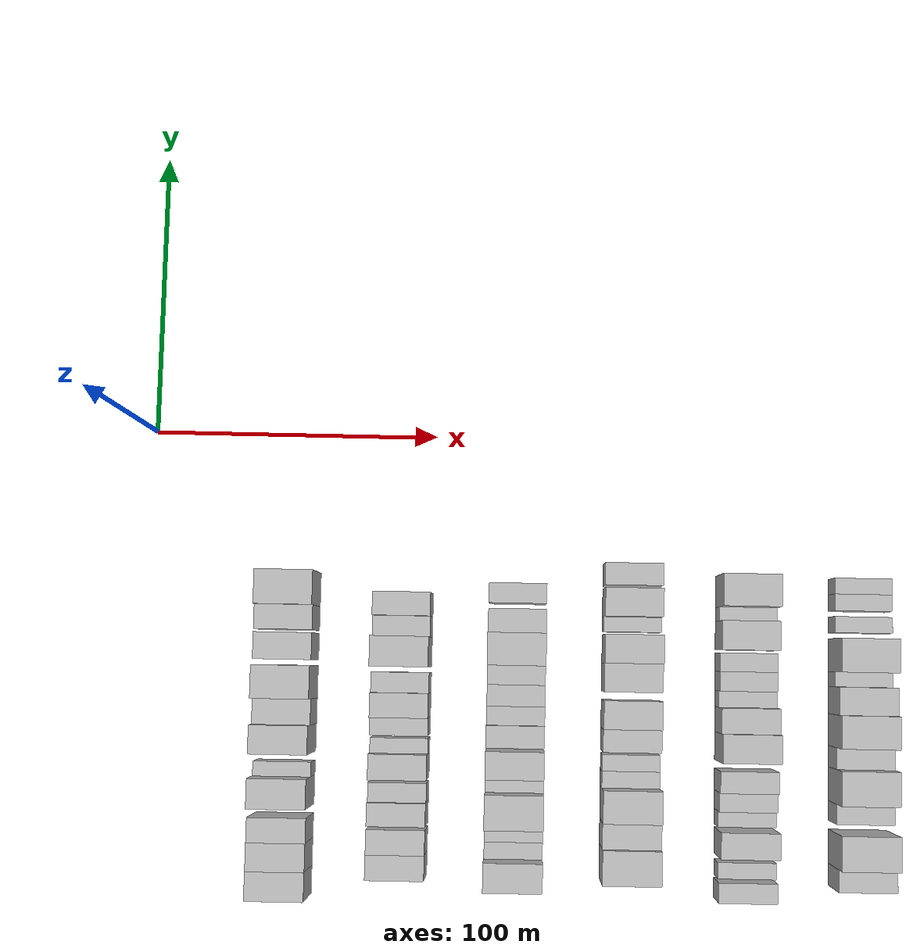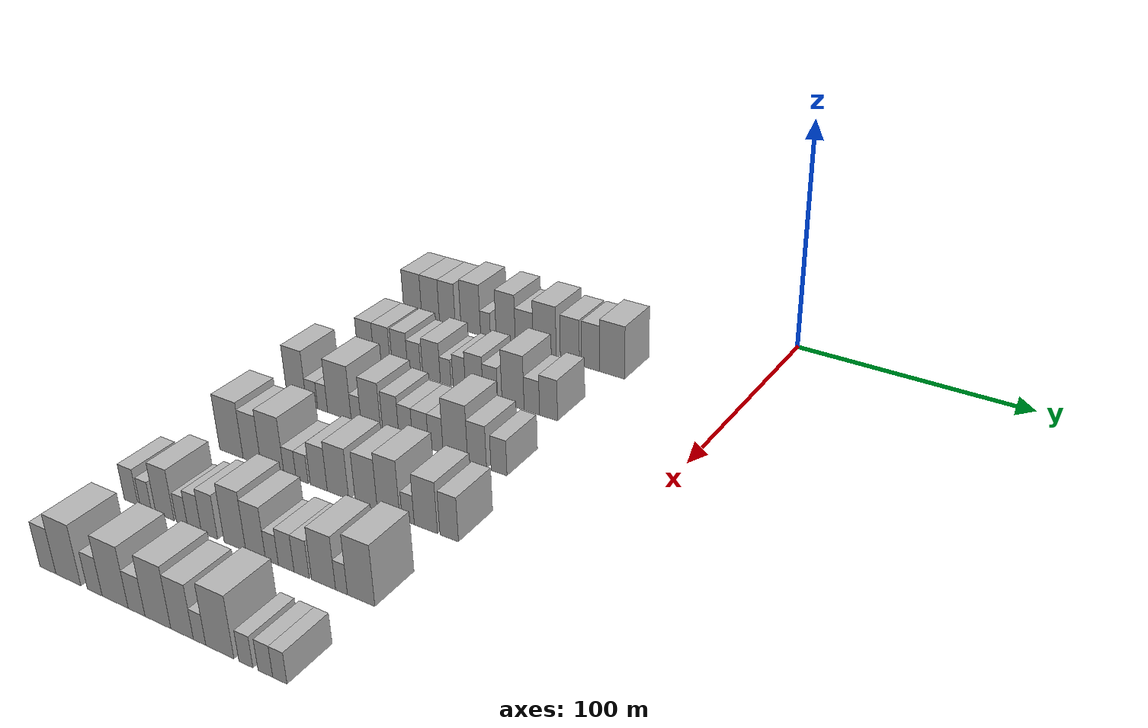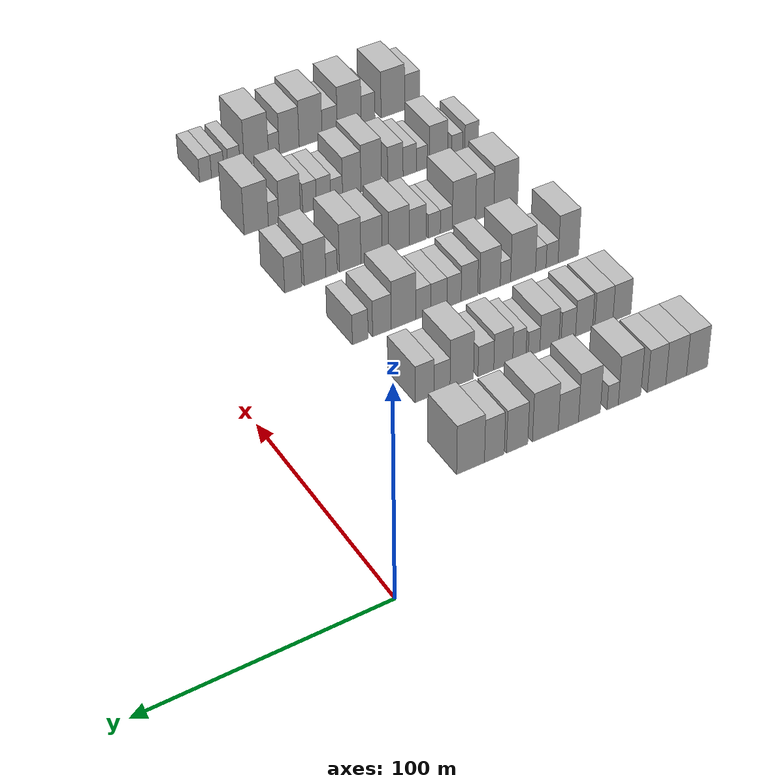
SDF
<sdf version="1.6">
 <world name="default">
  <model name="building_54">
   <static>1</static>
   <pose>50.0000 -156.0148 0 0.000000 0.000000 0.000000</pose>
   <link name="link">
    <pose>0 0 10.50 0 0 0</pose>
    <collision name="collision"><geometry><box><size>20.0000 9.7629 21.0000</size></box></geometry></collision>
    <visual name="visual">
     <cast_shadows>0</cast_shadows>
     <geometry><box><size>20.0000 9.7629 21.0000</size></box></geometry>
     <material>
      <script>
       <uri>model://HANNAS_wall/materials/scripts</uri>
       <uri>model://HANNAS_wall/materials/textures</uri>
       <name>vrc/HANNAS_wall</name>
      </script>
     </material>
    </visual>
   </link>
  </model>
  <model name="building_55">
   <static>1</static>
   <pose>50.0000 -146.3643 0 0.000000 0.000000 0.000000</pose>
   <link name="link">
    <pose>0 0 10.50 0 0 0</pose>
    <collision name="collision"><geometry><box><size>20.0000 9.5380 21.0000</size></box></geometry></collision>
    <visual name="visual">
     <cast_shadows>0</cast_shadows>
     <geometry><box><size>20.0000 9.5380 21.0000</size></box></geometry>
     <material>
      <script>
       <uri>model://HANNAS_wall/materials/scripts</uri>
       <uri>model://HANNAS_wall/materials/textures</uri>
       <name>vrc/HANNAS_wall</name>
      </script>
     </material>
    </visual>
   </link>
  </model>
  <model name="building_56">
   <static>1</static>
   <pose>50.0000 -137.3836 0 0.000000 0.000000 0.000000</pose>
   <link name="link">
    <pose>0 0 10.50 0 0 0</pose>
    <collision name="collision"><geometry><box><size>20.0000 8.4233 21.0000</size></box></geometry></collision>
    <visual name="visual">
     <cast_shadows>0</cast_shadows>
     <geometry><box><size>20.0000 8.4233 21.0000</size></box></geometry>
     <material>
      <script>
       <uri>model://HANNAS_wall/materials/scripts</uri>
       <uri>model://HANNAS_wall/materials/textures</uri>
       <name>vrc/HANNAS_wall</name>
      </script>
     </material>
    </visual>
   </link>
  </model>
  <model name="building_57">
   <static>1</static>
   <pose>50.0000 -125.0789 0 0.000000 0.000000 0.000000</pose>
   <link name="link">
    <pose>0 0 12.00 0 0 0</pose>
    <collision name="collision"><geometry><box><size>20.0000 10.1862 24.0000</size></box></geometry></collision>
    <visual name="visual">
     <cast_shadows>0</cast_shadows>
     <geometry><box><size>20.0000 10.1862 24.0000</size></box></geometry>
     <material>
      <script>
       <uri>model://HANNAS_wall/materials/scripts</uri>
       <uri>model://HANNAS_wall/materials/textures</uri>
       <name>vrc/HANNAS_wall</name>
      </script>
     </material>
    </visual>
   </link>
  </model>
  <model name="building_58">
   <static>1</static>
   <pose>50.0000 -117.4478 0 0.000000 0.000000 0.000000</pose>
   <link name="link">
    <pose>0 0 6.00 0 0 0</pose>
    <collision name="collision"><geometry><box><size>20.0000 5.0759 12.0000</size></box></geometry></collision>
    <visual name="visual">
     <cast_shadows>0</cast_shadows>
     <geometry><box><size>20.0000 5.0759 12.0000</size></box></geometry>
     <material>
      <script>
       <uri>model://HANNAS_wall/materials/scripts</uri>
       <uri>model://HANNAS_wall/materials/textures</uri>
       <name>vrc/HANNAS_wall</name>
      </script>
     </material>
    </visual>
   </link>
  </model>
  <model name="building_59">
   <static>1</static>
   <pose>50.0000 -107.0436 0 0.000000 0.000000 0.000000</pose>
   <link name="link">
    <pose>0 0 12.00 0 0 0</pose>
    <collision name="collision"><geometry><box><size>20.0000 9.7326 24.0000</size></box></geometry></collision>
    <visual name="visual">
     <cast_shadows>0</cast_shadows>
     <geometry><box><size>20.0000 9.7326 24.0000</size></box></geometry>
     <material>
      <script>
       <uri>model://HANNAS_wall/materials/scripts</uri>
       <uri>model://HANNAS_wall/materials/textures</uri>
       <name>vrc/HANNAS_wall</name>
      </script>
     </material>
    </visual>
   </link>
  </model>
  <model name="building_60">
   <static>1</static>
   <pose>50.0000 -97.7264 0 0.000000 0.000000 0.000000</pose>
   <link name="link">
    <pose>0 0 9.00 0 0 0</pose>
    <collision name="collision"><geometry><box><size>20.0000 8.9018 18.0000</size></box></geometry></collision>
    <visual name="visual">
     <cast_shadows>0</cast_shadows>
     <geometry><box><size>20.0000 8.9018 18.0000</size></box></geometry>
     <material>
      <script>
       <uri>model://HANNAS_wall/materials/scripts</uri>
       <uri>model://HANNAS_wall/materials/textures</uri>
       <name>vrc/HANNAS_wall</name>
      </script>
     </material>
    </visual>
   </link>
  </model>
  <model name="building_61">
   <static>1</static>
   <pose>50.0000 -87.6133 0 0.000000 0.000000 0.000000</pose>
   <link name="link">
    <pose>0 0 12.00 0 0 0</pose>
    <collision name="collision"><geometry><box><size>20.0000 11.3243 24.0000</size></box></geometry></collision>
    <visual name="visual">
     <cast_shadows>0</cast_shadows>
     <geometry><box><size>20.0000 11.3243 24.0000</size></box></geometry>
     <material>
      <script>
       <uri>model://HANNAS_wall/materials/scripts</uri>
       <uri>model://HANNAS_wall/materials/textures</uri>
       <name>vrc/HANNAS_wall</name>
      </script>
     </material>
    </visual>
   </link>
  </model>
  <model name="building_62">
   <static>1</static>
   <pose>50.0000 -75.3407 0 0.000000 0.000000 0.000000</pose>
   <link name="link">
    <pose>0 0 10.50 0 0 0</pose>
    <collision name="collision"><geometry><box><size>20.0000 9.2208 21.0000</size></box></geometry></collision>
    <visual name="visual">
     <cast_shadows>0</cast_shadows>
     <geometry><box><size>20.0000 9.2208 21.0000</size></box></geometry>
     <material>
      <script>
       <uri>model://HANNAS_wall/materials/scripts</uri>
       <uri>model://HANNAS_wall/materials/textures</uri>
       <name>vrc/HANNAS_wall</name>
      </script>
     </material>
    </visual>
   </link>
  </model>
  <model name="building_63">
   <static>1</static>
   <pose>50.0000 -65.4901 0 0.000000 0.000000 0.000000</pose>
   <link name="link">
    <pose>0 0 10.50 0 0 0</pose>
    <collision name="collision"><geometry><box><size>20.0000 8.4803 21.0000</size></box></geometry></collision>
    <visual name="visual">
     <cast_shadows>0</cast_shadows>
     <geometry><box><size>20.0000 8.4803 21.0000</size></box></geometry>
     <material>
      <script>
       <uri>model://HANNAS_wall/materials/scripts</uri>
       <uri>model://HANNAS_wall/materials/textures</uri>
       <name>vrc/HANNAS_wall</name>
      </script>
     </material>
    </visual>
   </link>
  </model>
  <model name="building_64">
   <static>1</static>
   <pose>50.0000 -55.3311 0 0.000000 0.000000 0.000000</pose>
   <link name="link">
    <pose>0 0 12.00 0 0 0</pose>
    <collision name="collision"><geometry><box><size>20.0000 11.8376 24.0000</size></box></geometry></collision>
    <visual name="visual">
     <cast_shadows>0</cast_shadows>
     <geometry><box><size>20.0000 11.8376 24.0000</size></box></geometry>
     <material>
      <script>
       <uri>model://HANNAS_wall/materials/scripts</uri>
       <uri>model://HANNAS_wall/materials/textures</uri>
       <name>vrc/HANNAS_wall</name>
      </script>
     </material>
    </visual>
   </link>
  </model>
  <model name="building_184">
   <static>1</static>
   <pose>90.0000 -149.4450 0 0.000000 0.000000 0.000000</pose>
   <link name="link">
    <pose>0 0 9.00 0 0 0</pose>
    <collision name="collision"><geometry><box><size>20.0000 8.4747 18.0000</size></box></geometry></collision>
    <visual name="visual">
     <cast_shadows>0</cast_shadows>
     <geometry><box><size>20.0000 8.4747 18.0000</size></box></geometry>
     <material>
      <script>
       <uri>model://HANNAS_wall/materials/scripts</uri>
       <uri>model://HANNAS_wall/materials/textures</uri>
       <name>vrc/HANNAS_wall</name>
      </script>
     </material>
    </visual>
   </link>
  </model>
  <model name="building_185">
   <static>1</static>
   <pose>90.0000 -140.9749 0 0.000000 0.000000 0.000000</pose>
   <link name="link">
    <pose>0 0 9.00 0 0 0</pose>
    <collision name="collision"><geometry><box><size>20.0000 8.4656 18.0000</size></box></geometry></collision>
    <visual name="visual">
     <cast_shadows>0</cast_shadows>
     <geometry><box><size>20.0000 8.4656 18.0000</size></box></geometry>
     <material>
      <script>
       <uri>model://HANNAS_wall/materials/scripts</uri>
       <uri>model://HANNAS_wall/materials/textures</uri>
       <name>vrc/HANNAS_wall</name>
      </script>
     </material>
    </visual>
   </link>
  </model>
  <model name="building_186">
   <static>1</static>
   <pose>90.0000 -131.7781 0 0.000000 0.000000 0.000000</pose>
   <link name="link">
    <pose>0 0 9.00 0 0 0</pose>
    <collision name="collision"><geometry><box><size>20.0000 7.9278 18.0000</size></box></geometry></collision>
    <visual name="visual">
     <cast_shadows>0</cast_shadows>
     <geometry><box><size>20.0000 7.9278 18.0000</size></box></geometry>
     <material>
      <script>
       <uri>model://HANNAS_wall/materials/scripts</uri>
       <uri>model://HANNAS_wall/materials/textures</uri>
       <name>vrc/HANNAS_wall</name>
      </script>
     </material>
    </visual>
   </link>
  </model>
  <model name="building_187">
   <static>1</static>
   <pose>90.0000 -124.4977 0 0.000000 0.000000 0.000000</pose>
   <link name="link">
    <pose>0 0 7.50 0 0 0</pose>
    <collision name="collision"><geometry><box><size>20.0000 6.6331 15.0000</size></box></geometry></collision>
    <visual name="visual">
     <cast_shadows>0</cast_shadows>
     <geometry><box><size>20.0000 6.6331 15.0000</size></box></geometry>
     <material>
      <script>
       <uri>model://HANNAS_wall/materials/scripts</uri>
       <uri>model://HANNAS_wall/materials/textures</uri>
       <name>vrc/HANNAS_wall</name>
      </script>
     </material>
    </visual>
   </link>
  </model>
  <model name="building_188">
   <static>1</static>
   <pose>90.0000 -115.8214 0 0.000000 0.000000 0.000000</pose>
   <link name="link">
    <pose>0 0 9.00 0 0 0</pose>
    <collision name="collision"><geometry><box><size>20.0000 8.7195 18.0000</size></box></geometry></collision>
    <visual name="visual">
     <cast_shadows>0</cast_shadows>
     <geometry><box><size>20.0000 8.7195 18.0000</size></box></geometry>
     <material>
      <script>
       <uri>model://HANNAS_wall/materials/scripts</uri>
       <uri>model://HANNAS_wall/materials/textures</uri>
       <name>vrc/HANNAS_wall</name>
      </script>
     </material>
    </visual>
   </link>
  </model>
  <model name="building_189">
   <static>1</static>
   <pose>90.0000 -108.8115 0 0.000000 0.000000 0.000000</pose>
   <link name="link">
    <pose>0 0 6.00 0 0 0</pose>
    <collision name="collision"><geometry><box><size>20.0000 5.3002 12.0000</size></box></geometry></collision>
    <visual name="visual">
     <cast_shadows>0</cast_shadows>
     <geometry><box><size>20.0000 5.3002 12.0000</size></box></geometry>
     <material>
      <script>
       <uri>model://HANNAS_wall/materials/scripts</uri>
       <uri>model://HANNAS_wall/materials/textures</uri>
       <name>vrc/HANNAS_wall</name>
      </script>
     </material>
    </visual>
   </link>
  </model>
  <model name="building_190">
   <static>1</static>
   <pose>90.0000 -102.1431 0 0.000000 0.000000 0.000000</pose>
   <link name="link">
    <pose>0 0 7.50 0 0 0</pose>
    <collision name="collision"><geometry><box><size>20.0000 6.0365 15.0000</size></box></geometry></collision>
    <visual name="visual">
     <cast_shadows>0</cast_shadows>
     <geometry><box><size>20.0000 6.0365 15.0000</size></box></geometry>
     <material>
      <script>
       <uri>model://HANNAS_wall/materials/scripts</uri>
       <uri>model://HANNAS_wall/materials/textures</uri>
       <name>vrc/HANNAS_wall</name>
      </script>
     </material>
    </visual>
   </link>
  </model>
  <model name="building_191">
   <static>1</static>
   <pose>90.0000 -94.9006 0 0.000000 0.000000 0.000000</pose>
   <link name="link">
    <pose>0 0 9.00 0 0 0</pose>
    <collision name="collision"><geometry><box><size>20.0000 8.4486 18.0000</size></box></geometry></collision>
    <visual name="visual">
     <cast_shadows>0</cast_shadows>
     <geometry><box><size>20.0000 8.4486 18.0000</size></box></geometry>
     <material>
      <script>
       <uri>model://HANNAS_wall/materials/scripts</uri>
       <uri>model://HANNAS_wall/materials/textures</uri>
       <name>vrc/HANNAS_wall</name>
      </script>
     </material>
    </visual>
   </link>
  </model>
  <model name="building_192">
   <static>1</static>
   <pose>90.0000 -87.1714 0 0.000000 0.000000 0.000000</pose>
   <link name="link">
    <pose>0 0 7.50 0 0 0</pose>
    <collision name="collision"><geometry><box><size>20.0000 7.0098 15.0000</size></box></geometry></collision>
    <visual name="visual">
     <cast_shadows>0</cast_shadows>
     <geometry><box><size>20.0000 7.0098 15.0000</size></box></geometry>
     <material>
      <script>
       <uri>model://HANNAS_wall/materials/scripts</uri>
       <uri>model://HANNAS_wall/materials/textures</uri>
       <name>vrc/HANNAS_wall</name>
      </script>
     </material>
    </visual>
   </link>
  </model>
  <model name="building_193">
   <static>1</static>
   <pose>90.0000 -76.4943 0 0.000000 0.000000 0.000000</pose>
   <link name="link">
    <pose>0 0 12.00 0 0 0</pose>
    <collision name="collision"><geometry><box><size>20.0000 10.3445 24.0000</size></box></geometry></collision>
    <visual name="visual">
     <cast_shadows>0</cast_shadows>
     <geometry><box><size>20.0000 10.3445 24.0000</size></box></geometry>
     <material>
      <script>
       <uri>model://HANNAS_wall/materials/scripts</uri>
       <uri>model://HANNAS_wall/materials/textures</uri>
       <name>vrc/HANNAS_wall</name>
      </script>
     </material>
    </visual>
   </link>
  </model>
  <model name="building_194">
   <static>1</static>
   <pose>90.0000 -67.7689 0 0.000000 0.000000 0.000000</pose>
   <link name="link">
    <pose>0 0 7.50 0 0 0</pose>
    <collision name="collision"><geometry><box><size>20.0000 7.1063 15.0000</size></box></geometry></collision>
    <visual name="visual">
     <cast_shadows>0</cast_shadows>
     <geometry><box><size>20.0000 7.1063 15.0000</size></box></geometry>
     <material>
      <script>
       <uri>model://HANNAS_wall/materials/scripts</uri>
       <uri>model://HANNAS_wall/materials/textures</uri>
       <name>vrc/HANNAS_wall</name>
      </script>
     </material>
    </visual>
   </link>
  </model>
  <model name="building_195">
   <static>1</static>
   <pose>90.0000 -60.1224 0 0.000000 0.000000 0.000000</pose>
   <link name="link">
    <pose>0 0 9.00 0 0 0</pose>
    <collision name="collision"><geometry><box><size>20.0000 8.1866 18.0000</size></box></geometry></collision>
    <visual name="visual">
     <cast_shadows>0</cast_shadows>
     <geometry><box><size>20.0000 8.1866 18.0000</size></box></geometry>
     <material>
      <script>
       <uri>model://HANNAS_wall/materials/scripts</uri>
       <uri>model://HANNAS_wall/materials/textures</uri>
       <name>vrc/HANNAS_wall</name>
      </script>
     </material>
    </visual>
   </link>
  </model>
  <model name="building_327">
   <static>1</static>
   <pose>130.0000 -151.3359 0 0.000000 0.000000 0.000000</pose>
   <link name="link">
    <pose>0 0 12.00 0 0 0</pose>
    <collision name="collision"><geometry><box><size>20.0000 9.8263 24.0000</size></box></geometry></collision>
    <visual name="visual">
     <cast_shadows>0</cast_shadows>
     <geometry><box><size>20.0000 9.8263 24.0000</size></box></geometry>
     <material>
      <script>
       <uri>model://HANNAS_wall/materials/scripts</uri>
       <uri>model://HANNAS_wall/materials/textures</uri>
       <name>vrc/HANNAS_wall</name>
      </script>
     </material>
    </visual>
   </link>
  </model>
  <model name="building_328">
   <static>1</static>
   <pose>130.0000 -143.5663 0 0.000000 0.000000 0.000000</pose>
   <link name="link">
    <pose>0 0 6.00 0 0 0</pose>
    <collision name="collision"><geometry><box><size>20.0000 5.7130 12.0000</size></box></geometry></collision>
    <visual name="visual">
     <cast_shadows>0</cast_shadows>
     <geometry><box><size>20.0000 5.7130 12.0000</size></box></geometry>
     <material>
      <script>
       <uri>model://HANNAS_wall/materials/scripts</uri>
       <uri>model://HANNAS_wall/materials/textures</uri>
       <name>vrc/HANNAS_wall</name>
      </script>
     </material>
    </visual>
   </link>
  </model>
  <model name="building_329">
   <static>1</static>
   <pose>130.0000 -138.2168 0 0.000000 0.000000 0.000000</pose>
   <link name="link">
    <pose>0 0 6.00 0 0 0</pose>
    <collision name="collision"><geometry><box><size>20.0000 4.9859 12.0000</size></box></geometry></collision>
    <visual name="visual">
     <cast_shadows>0</cast_shadows>
     <geometry><box><size>20.0000 4.9859 12.0000</size></box></geometry>
     <material>
      <script>
       <uri>model://HANNAS_wall/materials/scripts</uri>
       <uri>model://HANNAS_wall/materials/textures</uri>
       <name>vrc/HANNAS_wall</name>
      </script>
     </material>
    </visual>
   </link>
  </model>
  <model name="building_330">
   <static>1</static>
   <pose>130.0000 -129.8608 0 0.000000 0.000000 0.000000</pose>
   <link name="link">
    <pose>0 0 12.00 0 0 0</pose>
    <collision name="collision"><geometry><box><size>20.0000 11.7262 24.0000</size></box></geometry></collision>
    <visual name="visual">
     <cast_shadows>0</cast_shadows>
     <geometry><box><size>20.0000 11.7262 24.0000</size></box></geometry>
     <material>
      <script>
       <uri>model://HANNAS_wall/materials/scripts</uri>
       <uri>model://HANNAS_wall/materials/textures</uri>
       <name>vrc/HANNAS_wall</name>
      </script>
     </material>
    </visual>
   </link>
  </model>
  <model name="building_331">
   <static>1</static>
   <pose>130.0000 -121.5861 0 0.000000 0.000000 0.000000</pose>
   <link name="link">
    <pose>0 0 6.00 0 0 0</pose>
    <collision name="collision"><geometry><box><size>20.0000 4.8232 12.0000</size></box></geometry></collision>
    <visual name="visual">
     <cast_shadows>0</cast_shadows>
     <geometry><box><size>20.0000 4.8232 12.0000</size></box></geometry>
     <material>
      <script>
       <uri>model://HANNAS_wall/materials/scripts</uri>
       <uri>model://HANNAS_wall/materials/textures</uri>
       <name>vrc/HANNAS_wall</name>
      </script>
     </material>
    </visual>
   </link>
  </model>
  <model name="building_332">
   <static>1</static>
   <pose>130.0000 -114.4286 0 0.000000 0.000000 0.000000</pose>
   <link name="link">
    <pose>0 0 10.50 0 0 0</pose>
    <collision name="collision"><geometry><box><size>20.0000 9.4918 21.0000</size></box></geometry></collision>
    <visual name="visual">
     <cast_shadows>0</cast_shadows>
     <geometry><box><size>20.0000 9.4918 21.0000</size></box></geometry>
     <material>
      <script>
       <uri>model://HANNAS_wall/materials/scripts</uri>
       <uri>model://HANNAS_wall/materials/textures</uri>
       <name>vrc/HANNAS_wall</name>
      </script>
     </material>
    </visual>
   </link>
  </model>
  <model name="building_333">
   <static>1</static>
   <pose>130.0000 -104.8612 0 0.000000 0.000000 0.000000</pose>
   <link name="link">
    <pose>0 0 9.00 0 0 0</pose>
    <collision name="collision"><geometry><box><size>20.0000 7.6431 18.0000</size></box></geometry></collision>
    <visual name="visual">
     <cast_shadows>0</cast_shadows>
     <geometry><box><size>20.0000 7.6431 18.0000</size></box></geometry>
     <material>
      <script>
       <uri>model://HANNAS_wall/materials/scripts</uri>
       <uri>model://HANNAS_wall/materials/textures</uri>
       <name>vrc/HANNAS_wall</name>
      </script>
     </material>
    </visual>
   </link>
  </model>
  <model name="building_334">
   <static>1</static>
   <pose>130.0000 -97.8094 0 0.000000 0.000000 0.000000</pose>
   <link name="link">
    <pose>0 0 7.50 0 0 0</pose>
    <collision name="collision"><geometry><box><size>20.0000 6.4604 15.0000</size></box></geometry></collision>
    <visual name="visual">
     <cast_shadows>0</cast_shadows>
     <geometry><box><size>20.0000 6.4604 15.0000</size></box></geometry>
     <material>
      <script>
       <uri>model://HANNAS_wall/materials/scripts</uri>
       <uri>model://HANNAS_wall/materials/textures</uri>
       <name>vrc/HANNAS_wall</name>
      </script>
     </material>
    </visual>
   </link>
  </model>
  <model name="building_335">
   <static>1</static>
   <pose>130.0000 -90.8965 0 0.000000 0.000000 0.000000</pose>
   <link name="link">
    <pose>0 0 7.50 0 0 0</pose>
    <collision name="collision"><geometry><box><size>20.0000 7.3654 15.0000</size></box></geometry></collision>
    <visual name="visual">
     <cast_shadows>0</cast_shadows>
     <geometry><box><size>20.0000 7.3654 15.0000</size></box></geometry>
     <material>
      <script>
       <uri>model://HANNAS_wall/materials/scripts</uri>
       <uri>model://HANNAS_wall/materials/textures</uri>
       <name>vrc/HANNAS_wall</name>
      </script>
     </material>
    </visual>
   </link>
  </model>
  <model name="building_336">
   <static>1</static>
   <pose>130.0000 -83.8721 0 0.000000 0.000000 0.000000</pose>
   <link name="link">
    <pose>0 0 7.50 0 0 0</pose>
    <collision name="collision"><geometry><box><size>20.0000 6.6833 15.0000</size></box></geometry></collision>
    <visual name="visual">
     <cast_shadows>0</cast_shadows>
     <geometry><box><size>20.0000 6.6833 15.0000</size></box></geometry>
     <material>
      <script>
       <uri>model://HANNAS_wall/materials/scripts</uri>
       <uri>model://HANNAS_wall/materials/textures</uri>
       <name>vrc/HANNAS_wall</name>
      </script>
     </material>
    </visual>
   </link>
  </model>
  <model name="building_337">
   <static>1</static>
   <pose>130.0000 -74.9870 0 0.000000 0.000000 0.000000</pose>
   <link name="link">
    <pose>0 0 12.00 0 0 0</pose>
    <collision name="collision"><geometry><box><size>20.0000 11.0868 24.0000</size></box></geometry></collision>
    <visual name="visual">
     <cast_shadows>0</cast_shadows>
     <geometry><box><size>20.0000 11.0868 24.0000</size></box></geometry>
     <material>
      <script>
       <uri>model://HANNAS_wall/materials/scripts</uri>
       <uri>model://HANNAS_wall/materials/textures</uri>
       <name>vrc/HANNAS_wall</name>
      </script>
     </material>
    </visual>
   </link>
  </model>
  <model name="building_338">
   <static>1</static>
   <pose>130.0000 -65.2865 0 0.000000 0.000000 0.000000</pose>
   <link name="link">
    <pose>0 0 9.00 0 0 0</pose>
    <collision name="collision"><geometry><box><size>20.0000 8.3142 18.0000</size></box></geometry></collision>
    <visual name="visual">
     <cast_shadows>0</cast_shadows>
     <geometry><box><size>20.0000 8.3142 18.0000</size></box></geometry>
     <material>
      <script>
       <uri>model://HANNAS_wall/materials/scripts</uri>
       <uri>model://HANNAS_wall/materials/textures</uri>
       <name>vrc/HANNAS_wall</name>
      </script>
     </material>
    </visual>
   </link>
  </model>
  <model name="building_339">
   <static>1</static>
   <pose>130.0000 -55.6611 0 0.000000 0.000000 0.000000</pose>
   <link name="link">
    <pose>0 0 7.50 0 0 0</pose>
    <collision name="collision"><geometry><box><size>20.0000 6.9366 15.0000</size></box></geometry></collision>
    <visual name="visual">
     <cast_shadows>0</cast_shadows>
     <geometry><box><size>20.0000 6.9366 15.0000</size></box></geometry>
     <material>
      <script>
       <uri>model://HANNAS_wall/materials/scripts</uri>
       <uri>model://HANNAS_wall/materials/textures</uri>
       <name>vrc/HANNAS_wall</name>
      </script>
     </material>
    </visual>
   </link>
  </model>
  <model name="building_470">
   <static>1</static>
   <pose>170.0000 -147.3793 0 0.000000 0.000000 0.000000</pose>
   <link name="link">
    <pose>0 0 12.00 0 0 0</pose>
    <collision name="collision"><geometry><box><size>20.0000 11.6485 24.0000</size></box></geometry></collision>
    <visual name="visual">
     <cast_shadows>0</cast_shadows>
     <geometry><box><size>20.0000 11.6485 24.0000</size></box></geometry>
     <material>
      <script>
       <uri>model://HANNAS_wall/materials/scripts</uri>
       <uri>model://HANNAS_wall/materials/textures</uri>
       <name>vrc/HANNAS_wall</name>
      </script>
     </material>
    </visual>
   </link>
  </model>
  <model name="building_471">
   <static>1</static>
   <pose>170.0000 -137.1943 0 0.000000 0.000000 0.000000</pose>
   <link name="link">
    <pose>0 0 10.50 0 0 0</pose>
    <collision name="collision"><geometry><box><size>20.0000 8.7215 21.0000</size></box></geometry></collision>
    <visual name="visual">
     <cast_shadows>0</cast_shadows>
     <geometry><box><size>20.0000 8.7215 21.0000</size></box></geometry>
     <material>
      <script>
       <uri>model://HANNAS_wall/materials/scripts</uri>
       <uri>model://HANNAS_wall/materials/textures</uri>
       <name>vrc/HANNAS_wall</name>
      </script>
     </material>
    </visual>
   </link>
  </model>
  <model name="building_472">
   <static>1</static>
   <pose>170.0000 -127.3039 0 0.000000 0.000000 0.000000</pose>
   <link name="link">
    <pose>0 0 12.00 0 0 0</pose>
    <collision name="collision"><geometry><box><size>20.0000 11.0593 24.0000</size></box></geometry></collision>
    <visual name="visual">
     <cast_shadows>0</cast_shadows>
     <geometry><box><size>20.0000 11.0593 24.0000</size></box></geometry>
     <material>
      <script>
       <uri>model://HANNAS_wall/materials/scripts</uri>
       <uri>model://HANNAS_wall/materials/textures</uri>
       <name>vrc/HANNAS_wall</name>
      </script>
     </material>
    </visual>
   </link>
  </model>
  <model name="building_473">
   <static>1</static>
   <pose>170.0000 -118.9125 0 0.000000 0.000000 0.000000</pose>
   <link name="link">
    <pose>0 0 6.00 0 0 0</pose>
    <collision name="collision"><geometry><box><size>20.0000 5.7234 12.0000</size></box></geometry></collision>
    <visual name="visual">
     <cast_shadows>0</cast_shadows>
     <geometry><box><size>20.0000 5.7234 12.0000</size></box></geometry>
     <material>
      <script>
       <uri>model://HANNAS_wall/materials/scripts</uri>
       <uri>model://HANNAS_wall/materials/textures</uri>
       <name>vrc/HANNAS_wall</name>
      </script>
     </material>
    </visual>
   </link>
  </model>
  <model name="building_474">
   <static>1</static>
   <pose>170.0000 -113.2252 0 0.000000 0.000000 0.000000</pose>
   <link name="link">
    <pose>0 0 6.00 0 0 0</pose>
    <collision name="collision"><geometry><box><size>20.0000 5.6512 12.0000</size></box></geometry></collision>
    <visual name="visual">
     <cast_shadows>0</cast_shadows>
     <geometry><box><size>20.0000 5.6512 12.0000</size></box></geometry>
     <material>
      <script>
       <uri>model://HANNAS_wall/materials/scripts</uri>
       <uri>model://HANNAS_wall/materials/textures</uri>
       <name>vrc/HANNAS_wall</name>
      </script>
     </material>
    </visual>
   </link>
  </model>
  <model name="building_475">
   <static>1</static>
   <pose>170.0000 -105.4837 0 0.000000 0.000000 0.000000</pose>
   <link name="link">
    <pose>0 0 9.00 0 0 0</pose>
    <collision name="collision"><geometry><box><size>20.0000 7.8318 18.0000</size></box></geometry></collision>
    <visual name="visual">
     <cast_shadows>0</cast_shadows>
     <geometry><box><size>20.0000 7.8318 18.0000</size></box></geometry>
     <material>
      <script>
       <uri>model://HANNAS_wall/materials/scripts</uri>
       <uri>model://HANNAS_wall/materials/textures</uri>
       <name>vrc/HANNAS_wall</name>
      </script>
     </material>
    </visual>
   </link>
  </model>
  <model name="building_476">
   <static>1</static>
   <pose>170.0000 -96.7162 0 0.000000 0.000000 0.000000</pose>
   <link name="link">
    <pose>0 0 10.50 0 0 0</pose>
    <collision name="collision"><geometry><box><size>20.0000 9.7033 21.0000</size></box></geometry></collision>
    <visual name="visual">
     <cast_shadows>0</cast_shadows>
     <geometry><box><size>20.0000 9.7033 21.0000</size></box></geometry>
     <material>
      <script>
       <uri>model://HANNAS_wall/materials/scripts</uri>
       <uri>model://HANNAS_wall/materials/textures</uri>
       <name>vrc/HANNAS_wall</name>
      </script>
     </material>
    </visual>
   </link>
  </model>
  <model name="building_477">
   <static>1</static>
   <pose>170.0000 -83.9877 0 0.000000 0.000000 0.000000</pose>
   <link name="link">
    <pose>0 0 10.50 0 0 0</pose>
    <collision name="collision"><geometry><box><size>20.0000 9.7536 21.0000</size></box></geometry></collision>
    <visual name="visual">
     <cast_shadows>0</cast_shadows>
     <geometry><box><size>20.0000 9.7536 21.0000</size></box></geometry>
     <material>
      <script>
       <uri>model://HANNAS_wall/materials/scripts</uri>
       <uri>model://HANNAS_wall/materials/textures</uri>
       <name>vrc/HANNAS_wall</name>
      </script>
     </material>
    </visual>
   </link>
  </model>
  <model name="building_478">
   <static>1</static>
   <pose>170.0000 -74.2060 0 0.000000 0.000000 0.000000</pose>
   <link name="link">
    <pose>0 0 12.00 0 0 0</pose>
    <collision name="collision"><geometry><box><size>20.0000 9.8100 24.0000</size></box></geometry></collision>
    <visual name="visual">
     <cast_shadows>0</cast_shadows>
     <geometry><box><size>20.0000 9.8100 24.0000</size></box></geometry>
     <material>
      <script>
       <uri>model://HANNAS_wall/materials/scripts</uri>
       <uri>model://HANNAS_wall/materials/textures</uri>
       <name>vrc/HANNAS_wall</name>
      </script>
     </material>
    </visual>
   </link>
  </model>
  <model name="building_479">
   <static>1</static>
   <pose>170.0000 -65.7153 0 0.000000 0.000000 0.000000</pose>
   <link name="link">
    <pose>0 0 6.00 0 0 0</pose>
    <collision name="collision"><geometry><box><size>20.0000 5.1715 12.0000</size></box></geometry></collision>
    <visual name="visual">
     <cast_shadows>0</cast_shadows>
     <geometry><box><size>20.0000 5.1715 12.0000</size></box></geometry>
     <material>
      <script>
       <uri>model://HANNAS_wall/materials/scripts</uri>
       <uri>model://HANNAS_wall/materials/textures</uri>
       <name>vrc/HANNAS_wall</name>
      </script>
     </material>
    </visual>
   </link>
  </model>
  <model name="building_480">
   <static>1</static>
   <pose>170.0000 -58.2227 0 0.000000 0.000000 0.000000</pose>
   <link name="link">
    <pose>0 0 10.50 0 0 0</pose>
    <collision name="collision"><geometry><box><size>20.0000 9.8137 21.0000</size></box></geometry></collision>
    <visual name="visual">
     <cast_shadows>0</cast_shadows>
     <geometry><box><size>20.0000 9.8137 21.0000</size></box></geometry>
     <material>
      <script>
       <uri>model://HANNAS_wall/materials/scripts</uri>
       <uri>model://HANNAS_wall/materials/textures</uri>
       <name>vrc/HANNAS_wall</name>
      </script>
     </material>
    </visual>
   </link>
  </model>
  <model name="building_481">
   <static>1</static>
   <pose>170.0000 -48.4758 0 0.000000 0.000000 0.000000</pose>
   <link name="link">
    <pose>0 0 9.00 0 0 0</pose>
    <collision name="collision"><geometry><box><size>20.0000 7.6800 18.0000</size></box></geometry></collision>
    <visual name="visual">
     <cast_shadows>0</cast_shadows>
     <geometry><box><size>20.0000 7.6800 18.0000</size></box></geometry>
     <material>
      <script>
       <uri>model://HANNAS_wall/materials/scripts</uri>
       <uri>model://HANNAS_wall/materials/textures</uri>
       <name>vrc/HANNAS_wall</name>
      </script>
     </material>
    </visual>
   </link>
  </model>
  <model name="building_591">
   <static>1</static>
   <pose>210.0000 -155.9898 0 0.000000 0.000000 0.000000</pose>
   <link name="link">
    <pose>0 0 7.50 0 0 0</pose>
    <collision name="collision"><geometry><box><size>20.0000 6.7856 15.0000</size></box></geometry></collision>
    <visual name="visual">
     <cast_shadows>0</cast_shadows>
     <geometry><box><size>20.0000 6.7856 15.0000</size></box></geometry>
     <material>
      <script>
       <uri>model://HANNAS_wall/materials/scripts</uri>
       <uri>model://HANNAS_wall/materials/textures</uri>
       <name>vrc/HANNAS_wall</name>
      </script>
     </material>
    </visual>
   </link>
  </model>
  <model name="building_592">
   <static>1</static>
   <pose>210.0000 -148.8487 0 0.000000 0.000000 0.000000</pose>
   <link name="link">
    <pose>0 0 6.00 0 0 0</pose>
    <collision name="collision"><geometry><box><size>20.0000 5.4964 12.0000</size></box></geometry></collision>
    <visual name="visual">
     <cast_shadows>0</cast_shadows>
     <geometry><box><size>20.0000 5.4964 12.0000</size></box></geometry>
     <material>
      <script>
       <uri>model://HANNAS_wall/materials/scripts</uri>
       <uri>model://HANNAS_wall/materials/textures</uri>
       <name>vrc/HANNAS_wall</name>
      </script>
     </material>
    </visual>
   </link>
  </model>
  <model name="building_593">
   <static>1</static>
   <pose>210.0000 -139.6623 0 0.000000 0.000000 0.000000</pose>
   <link name="link">
    <pose>0 0 10.50 0 0 0</pose>
    <collision name="collision"><geometry><box><size>20.0000 8.8765 21.0000</size></box></geometry></collision>
    <visual name="visual">
     <cast_shadows>0</cast_shadows>
     <geometry><box><size>20.0000 8.8765 21.0000</size></box></geometry>
     <material>
      <script>
       <uri>model://HANNAS_wall/materials/scripts</uri>
       <uri>model://HANNAS_wall/materials/textures</uri>
       <name>vrc/HANNAS_wall</name>
      </script>
     </material>
    </visual>
   </link>
  </model>
  <model name="building_594">
   <static>1</static>
   <pose>210.0000 -131.5700 0 0.000000 0.000000 0.000000</pose>
   <link name="link">
    <pose>0 0 6.00 0 0 0</pose>
    <collision name="collision"><geometry><box><size>20.0000 5.3081 12.0000</size></box></geometry></collision>
    <visual name="visual">
     <cast_shadows>0</cast_shadows>
     <geometry><box><size>20.0000 5.3081 12.0000</size></box></geometry>
     <material>
      <script>
       <uri>model://HANNAS_wall/materials/scripts</uri>
       <uri>model://HANNAS_wall/materials/textures</uri>
       <name>vrc/HANNAS_wall</name>
      </script>
     </material>
    </visual>
   </link>
  </model>
  <model name="building_595">
   <static>1</static>
   <pose>210.0000 -125.6769 0 0.000000 0.000000 0.000000</pose>
   <link name="link">
    <pose>0 0 7.50 0 0 0</pose>
    <collision name="collision"><geometry><box><size>20.0000 6.4782 15.0000</size></box></geometry></collision>
    <visual name="visual">
     <cast_shadows>0</cast_shadows>
     <geometry><box><size>20.0000 6.4782 15.0000</size></box></geometry>
     <material>
      <script>
       <uri>model://HANNAS_wall/materials/scripts</uri>
       <uri>model://HANNAS_wall/materials/textures</uri>
       <name>vrc/HANNAS_wall</name>
      </script>
     </material>
    </visual>
   </link>
  </model>
  <model name="building_596">
   <static>1</static>
   <pose>210.0000 -118.7128 0 0.000000 0.000000 0.000000</pose>
   <link name="link">
    <pose>0 0 9.00 0 0 0</pose>
    <collision name="collision"><geometry><box><size>20.0000 7.4500 18.0000</size></box></geometry></collision>
    <visual name="visual">
     <cast_shadows>0</cast_shadows>
     <geometry><box><size>20.0000 7.4500 18.0000</size></box></geometry>
     <material>
      <script>
       <uri>model://HANNAS_wall/materials/scripts</uri>
       <uri>model://HANNAS_wall/materials/textures</uri>
       <name>vrc/HANNAS_wall</name>
      </script>
     </material>
    </visual>
   </link>
  </model>
  <model name="building_597">
   <static>1</static>
   <pose>210.0000 -107.1324 0 0.000000 0.000000 0.000000</pose>
   <link name="link">
    <pose>0 0 12.00 0 0 0</pose>
    <collision name="collision"><geometry><box><size>20.0000 9.7107 24.0000</size></box></geometry></collision>
    <visual name="visual">
     <cast_shadows>0</cast_shadows>
     <geometry><box><size>20.0000 9.7107 24.0000</size></box></geometry>
     <material>
      <script>
       <uri>model://HANNAS_wall/materials/scripts</uri>
       <uri>model://HANNAS_wall/materials/textures</uri>
       <name>vrc/HANNAS_wall</name>
      </script>
     </material>
    </visual>
   </link>
  </model>
  <model name="building_598">
   <static>1</static>
   <pose>210.0000 -97.9154 0 0.000000 0.000000 0.000000</pose>
   <link name="link">
    <pose>0 0 10.50 0 0 0</pose>
    <collision name="collision"><geometry><box><size>20.0000 8.7233 21.0000</size></box></geometry></collision>
    <visual name="visual">
     <cast_shadows>0</cast_shadows>
     <geometry><box><size>20.0000 8.7233 21.0000</size></box></geometry>
     <material>
      <script>
       <uri>model://HANNAS_wall/materials/scripts</uri>
       <uri>model://HANNAS_wall/materials/textures</uri>
       <name>vrc/HANNAS_wall</name>
      </script>
     </material>
    </visual>
   </link>
  </model>
  <model name="building_599">
   <static>1</static>
   <pose>210.0000 -90.7598 0 0.000000 0.000000 0.000000</pose>
   <link name="link">
    <pose>0 0 6.00 0 0 0</pose>
    <collision name="collision"><geometry><box><size>20.0000 5.5877 12.0000</size></box></geometry></collision>
    <visual name="visual">
     <cast_shadows>0</cast_shadows>
     <geometry><box><size>20.0000 5.5877 12.0000</size></box></geometry>
     <material>
      <script>
       <uri>model://HANNAS_wall/materials/scripts</uri>
       <uri>model://HANNAS_wall/materials/textures</uri>
       <name>vrc/HANNAS_wall</name>
      </script>
     </material>
    </visual>
   </link>
  </model>
  <model name="building_600">
   <static>1</static>
   <pose>210.0000 -84.6059 0 0.000000 0.000000 0.000000</pose>
   <link name="link">
    <pose>0 0 7.50 0 0 0</pose>
    <collision name="collision"><geometry><box><size>20.0000 6.7201 15.0000</size></box></geometry></collision>
    <visual name="visual">
     <cast_shadows>0</cast_shadows>
     <geometry><box><size>20.0000 6.7201 15.0000</size></box></geometry>
     <material>
      <script>
       <uri>model://HANNAS_wall/materials/scripts</uri>
       <uri>model://HANNAS_wall/materials/textures</uri>
       <name>vrc/HANNAS_wall</name>
      </script>
     </material>
    </visual>
   </link>
  </model>
  <model name="building_601">
   <static>1</static>
   <pose>210.0000 -78.0336 0 0.000000 0.000000 0.000000</pose>
   <link name="link">
    <pose>0 0 7.50 0 0 0</pose>
    <collision name="collision"><geometry><box><size>20.0000 6.4246 15.0000</size></box></geometry></collision>
    <visual name="visual">
     <cast_shadows>0</cast_shadows>
     <geometry><box><size>20.0000 6.4246 15.0000</size></box></geometry>
     <material>
      <script>
       <uri>model://HANNAS_wall/materials/scripts</uri>
       <uri>model://HANNAS_wall/materials/textures</uri>
       <name>vrc/HANNAS_wall</name>
      </script>
     </material>
    </visual>
   </link>
  </model>
  <model name="building_602">
   <static>1</static>
   <pose>210.0000 -68.8302 0 0.000000 0.000000 0.000000</pose>
   <link name="link">
    <pose>0 0 10.50 0 0 0</pose>
    <collision name="collision"><geometry><box><size>20.0000 9.9822 21.0000</size></box></geometry></collision>
    <visual name="visual">
     <cast_shadows>0</cast_shadows>
     <geometry><box><size>20.0000 9.9822 21.0000</size></box></geometry>
     <material>
      <script>
       <uri>model://HANNAS_wall/materials/scripts</uri>
       <uri>model://HANNAS_wall/materials/textures</uri>
       <name>vrc/HANNAS_wall</name>
      </script>
     </material>
    </visual>
   </link>
  </model>
  <model name="building_603">
   <static>1</static>
   <pose>210.0000 -61.4014 0 0.000000 0.000000 0.000000</pose>
   <link name="link">
    <pose>0 0 6.00 0 0 0</pose>
    <collision name="collision"><geometry><box><size>20.0000 4.8754 12.0000</size></box></geometry></collision>
    <visual name="visual">
     <cast_shadows>0</cast_shadows>
     <geometry><box><size>20.0000 4.8754 12.0000</size></box></geometry>
     <material>
      <script>
       <uri>model://HANNAS_wall/materials/scripts</uri>
       <uri>model://HANNAS_wall/materials/textures</uri>
       <name>vrc/HANNAS_wall</name>
      </script>
     </material>
    </visual>
   </link>
  </model>
  <model name="building_604">
   <static>1</static>
   <pose>210.0000 -53.4313 0 0.000000 0.000000 0.000000</pose>
   <link name="link">
    <pose>0 0 12.00 0 0 0</pose>
    <collision name="collision"><geometry><box><size>20.0000 11.0649 24.0000</size></box></geometry></collision>
    <visual name="visual">
     <cast_shadows>0</cast_shadows>
     <geometry><box><size>20.0000 11.0649 24.0000</size></box></geometry>
     <material>
      <script>
       <uri>model://HANNAS_wall/materials/scripts</uri>
       <uri>model://HANNAS_wall/materials/textures</uri>
       <name>vrc/HANNAS_wall</name>
      </script>
     </material>
    </visual>
   </link>
  </model>
  <model name="building_725">
   <static>1</static>
   <pose>250.0000 -150.8185 0 0.000000 0.000000 0.000000</pose>
   <link name="link">
    <pose>0 0 9.00 0 0 0</pose>
    <collision name="collision"><geometry><box><size>20.0000 7.5988 18.0000</size></box></geometry></collision>
    <visual name="visual">
     <cast_shadows>0</cast_shadows>
     <geometry><box><size>20.0000 7.5988 18.0000</size></box></geometry>
     <material>
      <script>
       <uri>model://HANNAS_wall/materials/scripts</uri>
       <uri>model://HANNAS_wall/materials/textures</uri>
       <name>vrc/HANNAS_wall</name>
      </script>
     </material>
    </visual>
   </link>
  </model>
  <model name="building_726">
   <static>1</static>
   <pose>250.0000 -141.1644 0 0.000000 0.000000 0.000000</pose>
   <link name="link">
    <pose>0 0 12.00 0 0 0</pose>
    <collision name="collision"><geometry><box><size>20.0000 11.7095 24.0000</size></box></geometry></collision>
    <visual name="visual">
     <cast_shadows>0</cast_shadows>
     <geometry><box><size>20.0000 11.7095 24.0000</size></box></geometry>
     <material>
      <script>
       <uri>model://HANNAS_wall/materials/scripts</uri>
       <uri>model://HANNAS_wall/materials/textures</uri>
       <name>vrc/HANNAS_wall</name>
      </script>
     </material>
    </visual>
   </link>
  </model>
  <model name="building_727">
   <static>1</static>
   <pose>250.0000 -128.9209 0 0.000000 0.000000 0.000000</pose>
   <link name="link">
    <pose>0 0 7.50 0 0 0</pose>
    <collision name="collision"><geometry><box><size>20.0000 6.7774 15.0000</size></box></geometry></collision>
    <visual name="visual">
     <cast_shadows>0</cast_shadows>
     <geometry><box><size>20.0000 6.7774 15.0000</size></box></geometry>
     <material>
      <script>
       <uri>model://HANNAS_wall/materials/scripts</uri>
       <uri>model://HANNAS_wall/materials/textures</uri>
       <name>vrc/HANNAS_wall</name>
      </script>
     </material>
    </visual>
   </link>
  </model>
  <model name="building_728">
   <static>1</static>
   <pose>250.0000 -119.6768 0 0.000000 0.000000 0.000000</pose>
   <link name="link">
    <pose>0 0 12.00 0 0 0</pose>
    <collision name="collision"><geometry><box><size>20.0000 11.7110 24.0000</size></box></geometry></collision>
    <visual name="visual">
     <cast_shadows>0</cast_shadows>
     <geometry><box><size>20.0000 11.7110 24.0000</size></box></geometry>
     <material>
      <script>
       <uri>model://HANNAS_wall/materials/scripts</uri>
       <uri>model://HANNAS_wall/materials/textures</uri>
       <name>vrc/HANNAS_wall</name>
      </script>
     </material>
    </visual>
   </link>
  </model>
  <model name="building_729">
   <static>1</static>
   <pose>250.0000 -110.1233 0 0.000000 0.000000 0.000000</pose>
   <link name="link">
    <pose>0 0 7.50 0 0 0</pose>
    <collision name="collision"><geometry><box><size>20.0000 7.3960 15.0000</size></box></geometry></collision>
    <visual name="visual">
     <cast_shadows>0</cast_shadows>
     <geometry><box><size>20.0000 7.3960 15.0000</size></box></geometry>
     <material>
      <script>
       <uri>model://HANNAS_wall/materials/scripts</uri>
       <uri>model://HANNAS_wall/materials/textures</uri>
       <name>vrc/HANNAS_wall</name>
      </script>
     </material>
    </visual>
   </link>
  </model>
  <model name="building_730">
   <static>1</static>
   <pose>250.0000 -100.8462 0 0.000000 0.000000 0.000000</pose>
   <link name="link">
    <pose>0 0 12.00 0 0 0</pose>
    <collision name="collision"><geometry><box><size>20.0000 11.1582 24.0000</size></box></geometry></collision>
    <visual name="visual">
     <cast_shadows>0</cast_shadows>
     <geometry><box><size>20.0000 11.1582 24.0000</size></box></geometry>
     <material>
      <script>
       <uri>model://HANNAS_wall/materials/scripts</uri>
       <uri>model://HANNAS_wall/materials/textures</uri>
       <name>vrc/HANNAS_wall</name>
      </script>
     </material>
    </visual>
   </link>
  </model>
  <model name="building_731">
   <static>1</static>
   <pose>250.0000 -90.5089 0 0.000000 0.000000 0.000000</pose>
   <link name="link">
    <pose>0 0 10.50 0 0 0</pose>
    <collision name="collision"><geometry><box><size>20.0000 9.5164 21.0000</size></box></geometry></collision>
    <visual name="visual">
     <cast_shadows>0</cast_shadows>
     <geometry><box><size>20.0000 9.5164 21.0000</size></box></geometry>
     <material>
      <script>
       <uri>model://HANNAS_wall/materials/scripts</uri>
       <uri>model://HANNAS_wall/materials/textures</uri>
       <name>vrc/HANNAS_wall</name>
      </script>
     </material>
    </visual>
   </link>
  </model>
  <model name="building_732">
   <static>1</static>
   <pose>250.0000 -83.1793 0 0.000000 0.000000 0.000000</pose>
   <link name="link">
    <pose>0 0 6.00 0 0 0</pose>
    <collision name="collision"><geometry><box><size>20.0000 5.1427 12.0000</size></box></geometry></collision>
    <visual name="visual">
     <cast_shadows>0</cast_shadows>
     <geometry><box><size>20.0000 5.1427 12.0000</size></box></geometry>
     <material>
      <script>
       <uri>model://HANNAS_wall/materials/scripts</uri>
       <uri>model://HANNAS_wall/materials/textures</uri>
       <name>vrc/HANNAS_wall</name>
      </script>
     </material>
    </visual>
   </link>
  </model>
  <model name="building_733">
   <static>1</static>
   <pose>250.0000 -74.8629 0 0.000000 0.000000 0.000000</pose>
   <link name="link">
    <pose>0 0 12.00 0 0 0</pose>
    <collision name="collision"><geometry><box><size>20.0000 11.4902 24.0000</size></box></geometry></collision>
    <visual name="visual">
     <cast_shadows>0</cast_shadows>
     <geometry><box><size>20.0000 11.4902 24.0000</size></box></geometry>
     <material>
      <script>
       <uri>model://HANNAS_wall/materials/scripts</uri>
       <uri>model://HANNAS_wall/materials/textures</uri>
       <name>vrc/HANNAS_wall</name>
      </script>
     </material>
    </visual>
   </link>
  </model>
  <model name="building_734">
   <static>1</static>
   <pose>250.0000 -64.3162 0 0.000000 0.000000 0.000000</pose>
   <link name="link">
    <pose>0 0 6.00 0 0 0</pose>
    <collision name="collision"><geometry><box><size>20.0000 5.6033 12.0000</size></box></geometry></collision>
    <visual name="visual">
     <cast_shadows>0</cast_shadows>
     <geometry><box><size>20.0000 5.6033 12.0000</size></box></geometry>
     <material>
      <script>
       <uri>model://HANNAS_wall/materials/scripts</uri>
       <uri>model://HANNAS_wall/materials/textures</uri>
       <name>vrc/HANNAS_wall</name>
      </script>
     </material>
    </visual>
   </link>
  </model>
  <model name="building_735">
   <static>1</static>
   <pose>250.0000 -56.6174 0 0.000000 0.000000 0.000000</pose>
   <link name="link">
    <pose>0 0 6.00 0 0 0</pose>
    <collision name="collision"><geometry><box><size>20.0000 5.7943 12.0000</size></box></geometry></collision>
    <visual name="visual">
     <cast_shadows>0</cast_shadows>
     <geometry><box><size>20.0000 5.7943 12.0000</size></box></geometry>
     <material>
      <script>
       <uri>model://HANNAS_wall/materials/scripts</uri>
       <uri>model://HANNAS_wall/materials/textures</uri>
       <name>vrc/HANNAS_wall</name>
      </script>
     </material>
    </visual>
   </link>
  </model>
  <model name="building_736">
   <static>1</static>
   <pose>250.0000 -50.9522 0 0.000000 0.000000 0.000000</pose>
   <link name="link">
    <pose>0 0 6.00 0 0 0</pose>
    <collision name="collision"><geometry><box><size>20.0000 5.5361 12.0000</size></box></geometry></collision>
    <visual name="visual">
     <cast_shadows>0</cast_shadows>
     <geometry><box><size>20.0000 5.5361 12.0000</size></box></geometry>
     <material>
      <script>
       <uri>model://HANNAS_wall/materials/scripts</uri>
       <uri>model://HANNAS_wall/materials/textures</uri>
       <name>vrc/HANNAS_wall</name>
      </script>
     </material>
    </visual>
   </link>
  </model>
 </world>
</sdf>
